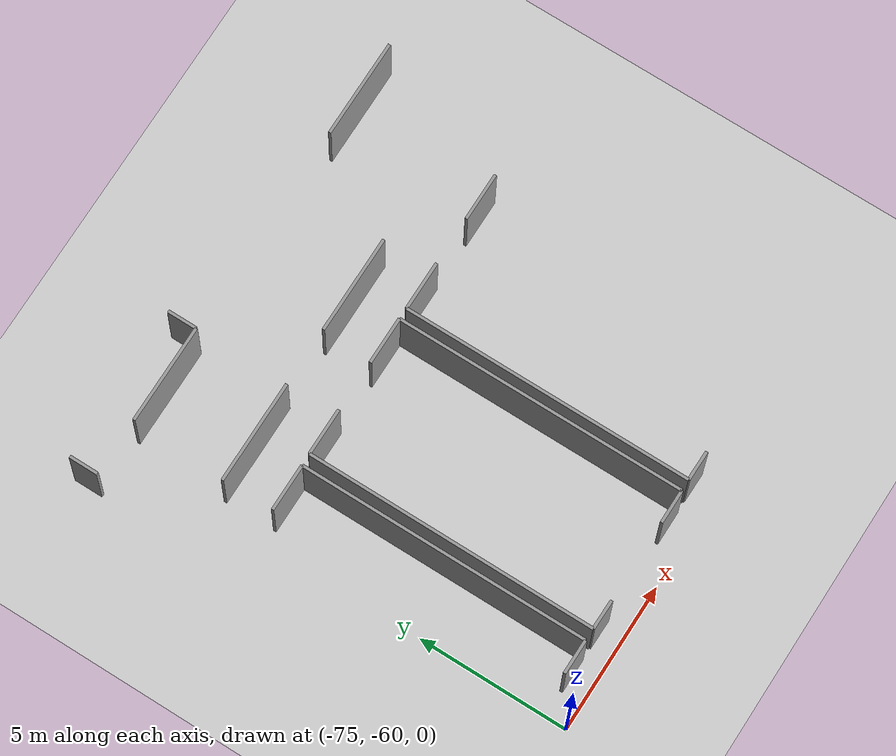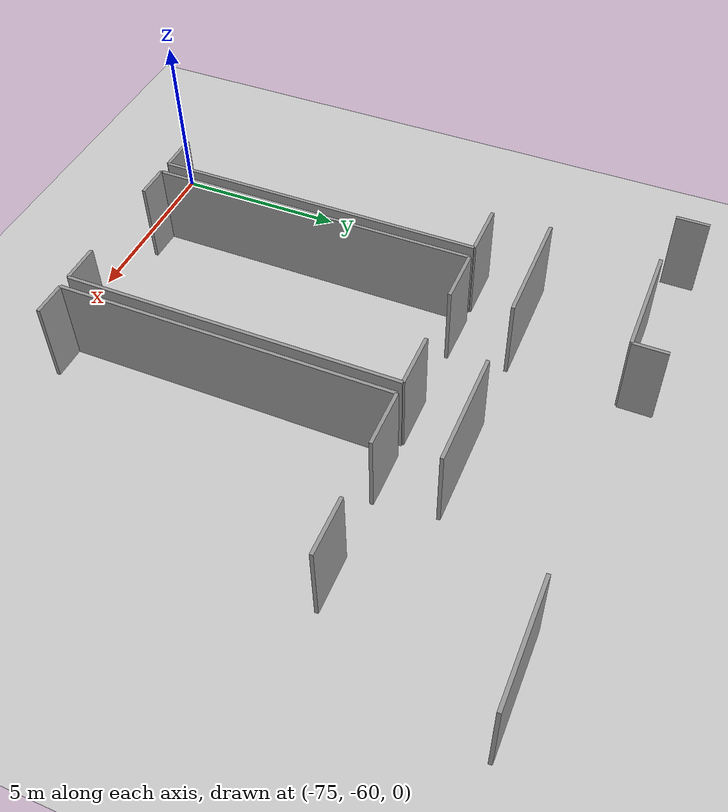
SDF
<sdf version="1.6">
 <world name="default">
  <model name="ground_plane">
   <static>1</static>
   <link name="link">
    <collision name="collision">
     <geometry><plane><normal>0 0 1</normal><size>100 100</size></plane></geometry>
     <surface><friction><ode><mu>100</mu><mu2>50</mu2></ode></friction></surface>
    </collision>
    <visual name="visual">
     <cast_shadows>0</cast_shadows>
     <geometry><plane><normal>0 0 1</normal><size>100 100</size></plane></geometry>
     <material>
      <script><uri>file://media/materials/scripts/gazebo.material</uri><name>Gazebo/Grey</name></script>
     </material>
    </visual>
   </link>
  </model>
  <model name="0510045926_A-40">
   <static>1</static>
   <link name="Wall_1304">
    <collision name="Wall_1304_Collision">
     <geometry><box><size>1.56768179309 0.1 2.5</size></box></geometry>
     <pose>0.783840896543 0 1.25 0 0 0</pose>
    </collision>
    <visual name="Wall_1304_Visual">
     <pose>0.783840896543 0 1.25 0 0 0</pose>
     <geometry><box><size>1.56768179309 0.1 2.5</size></box></geometry>
     <material>
      <script><uri>file://media/materials/scripts/gazebo.material</uri><name>Gazebo/Grey</name></script>
      <ambient>1 1 1 1</ambient>
     </material>
    </visual>
    <pose>59.3919648693 -150.813780674 0 0 0 0.0</pose>
   </link>
   <link name="Wall_1305">
    <collision name="Wall_1305_Collision">
     <geometry><box><size>9.58580557547 0.1 2.5</size></box></geometry>
     <pose>4.79290278774 0 1.25 0 0 0</pose>
    </collision>
    <visual name="Wall_1305_Visual">
     <pose>4.79290278774 0 1.25 0 0 0</pose>
     <geometry><box><size>9.58580557547 0.1 2.5</size></box></geometry>
     <material>
      <script><uri>file://media/materials/scripts/gazebo.material</uri><name>Gazebo/Grey</name></script>
      <ambient>1 1 1 1</ambient>
     </material>
    </visual>
    <pose>60.9596466624 -150.813780674 0 0 0 -1.57079632679</pose>
   </link>
   <link name="Wall_1306">
    <collision name="Wall_1306_Collision">
     <geometry><box><size>1.14098602007 0.1 2.5</size></box></geometry>
     <pose>0.570493010033 0 1.25 0 0 0</pose>
    </collision>
    <visual name="Wall_1306_Visual">
     <pose>0.570493010033 0 1.25 0 0 0</pose>
     <geometry><box><size>1.14098602007 0.1 2.5</size></box></geometry>
     <material>
      <script><uri>file://media/materials/scripts/gazebo.material</uri><name>Gazebo/Grey</name></script>
      <ambient>1 1 1 1</ambient>
     </material>
    </visual>
    <pose>60.9596466624 -160.39958625 0 0 0 3.14159265359</pose>
   </link>
   <link name="Wall_1308">
    <collision name="Wall_1308_Collision">
     <geometry><box><size>9.60332015509 0.1 2.5</size></box></geometry>
     <pose>4.80166007755 0 1.25 0 0 0</pose>
    </collision>
    <visual name="Wall_1308_Visual">
     <pose>4.80166007755 0 1.25 0 0 0</pose>
     <geometry><box><size>9.60332015509 0.1 2.5</size></box></geometry>
     <material>
      <script><uri>file://media/materials/scripts/gazebo.material</uri><name>Gazebo/Grey</name></script>
      <ambient>1 1 1 1</ambient>
     </material>
    </visual>
    <pose>61.3617204902 -160.40694745 0 0 0 1.57079632679</pose>
   </link>
   <link name="Wall_1309">
    <collision name="Wall_1309_Collision">
     <geometry><box><size>1.56235126886 0.1 2.5</size></box></geometry>
     <pose>0.781175634428 0 1.25 0 0 0</pose>
    </collision>
    <visual name="Wall_1309_Visual">
     <pose>0.781175634428 0 1.25 0 0 0</pose>
     <geometry><box><size>1.56235126886 0.1 2.5</size></box></geometry>
     <material>
      <script><uri>file://media/materials/scripts/gazebo.material</uri><name>Gazebo/Grey</name></script>
      <ambient>1 1 1 1</ambient>
     </material>
    </visual>
    <pose>61.3617204902 -150.803627295 0 0 0 0.0</pose>
   </link>
   <link name="Wall_1310">
    <collision name="Wall_1310_Collision">
     <geometry><box><size>1.57504299322 0.1 2.5</size></box></geometry>
     <pose>0.787521496608 0 1.25 0 0 0</pose>
    </collision>
    <visual name="Wall_1310_Visual">
     <pose>0.787521496608 0 1.25 0 0 0</pose>
     <geometry><box><size>1.57504299322 0.1 2.5</size></box></geometry>
     <material>
      <script><uri>file://media/materials/scripts/gazebo.material</uri><name>Gazebo/Grey</name></script>
      <ambient>1 1 1 1</ambient>
     </material>
    </visual>
    <pose>64.6148632784 -150.803627295 0 0 0 0.0</pose>
   </link>
   <link name="Wall_1311">
    <collision name="Wall_1311_Collision">
     <geometry><box><size>9.61474270702 0.1 2.5</size></box></geometry>
     <pose>4.80737135351 0 1.25 0 0 0</pose>
    </collision>
    <visual name="Wall_1311_Visual">
     <pose>4.80737135351 0 1.25 0 0 0</pose>
     <geometry><box><size>9.61474270702 0.1 2.5</size></box></geometry>
     <material>
      <script><uri>file://media/materials/scripts/gazebo.material</uri><name>Gazebo/Grey</name></script>
      <ambient>1 1 1 1</ambient>
     </material>
    </visual>
    <pose>66.1899062716 -150.803627295 0 0 0 -1.57079632679</pose>
   </link>
   <link name="Wall_1312">
    <collision name="Wall_1312_Collision">
     <geometry><box><size>1.12524828186 0.1 2.5</size></box></geometry>
     <pose>0.562624140929 0 1.25 0 0 0</pose>
    </collision>
    <visual name="Wall_1312_Visual">
     <pose>0.562624140929 0 1.25 0 0 0</pose>
     <geometry><box><size>1.12524828186 0.1 2.5</size></box></geometry>
     <material>
      <script><uri>file://media/materials/scripts/gazebo.material</uri><name>Gazebo/Grey</name></script>
      <ambient>1 1 1 1</ambient>
     </material>
    </visual>
    <pose>66.1899062716 -160.418370002 0 0 0 3.14159265359</pose>
   </link>
   <link name="Wall_1313">
    <collision name="Wall_1313_Collision">
     <geometry><box><size>0.983928777624 0.1 2.5</size></box></geometry>
     <pose>0.491964388812 0 1.25 0 0 0</pose>
    </collision>
    <visual name="Wall_1313_Visual">
     <pose>0.491964388812 0 1.25 0 0 0</pose>
     <geometry><box><size>0.983928777624 0.1 2.5</size></box></geometry>
     <material>
      <script><uri>file://media/materials/scripts/gazebo.material</uri><name>Gazebo/Grey</name></script>
      <ambient>1 1 1 1</ambient>
     </material>
    </visual>
    <pose>62.3455829626 -160.418370002 0 0 0 3.12998326806</pose>
   </link>
   <link name="Wall_1314">
    <collision name="Wall_1314_Collision">
     <geometry><box><size>9.60458932753 0.1 2.5</size></box></geometry>
     <pose>4.80229466376 0 1.25 0 0 0</pose>
    </collision>
    <visual name="Wall_1314_Visual">
     <pose>4.80229466376 0 1.25 0 0 0</pose>
     <geometry><box><size>9.60458932753 0.1 2.5</size></box></geometry>
     <material>
      <script><uri>file://media/materials/scripts/gazebo.material</uri><name>Gazebo/Grey</name></script>
      <ambient>1 1 1 1</ambient>
     </material>
    </visual>
    <pose>66.5678658231 -160.411516471 0 0 0 1.57079632679</pose>
   </link>
   <link name="Wall_1315">
    <collision name="Wall_1315_Collision">
     <geometry><box><size>1.63444026323 0.1 2.5</size></box></geometry>
     <pose>0.817220131613 0 1.25 0 0 0</pose>
    </collision>
    <visual name="Wall_1315_Visual">
     <pose>0.817220131613 0 1.25 0 0 0</pose>
     <geometry><box><size>1.63444026323 0.1 2.5</size></box></geometry>
     <material>
      <script><uri>file://media/materials/scripts/gazebo.material</uri><name>Gazebo/Grey</name></script>
      <ambient>1 1 1 1</ambient>
     </material>
    </visual>
    <pose>66.5678658231 -150.806927143 0 0 0 0.0</pose>
   </link>
   <link name="Wall_1316">
    <collision name="Wall_1316_Collision">
     <geometry><box><size>1.6090568145 0.1 2.5</size></box></geometry>
     <pose>0.804528407252 0 1.25 0 0 0</pose>
    </collision>
    <visual name="Wall_1316_Visual">
     <pose>0.804528407252 0 1.25 0 0 0</pose>
     <geometry><box><size>1.6090568145 0.1 2.5</size></box></geometry>
     <material>
      <script><uri>file://media/materials/scripts/gazebo.material</uri><name>Gazebo/Grey</name></script>
      <ambient>1 1 1 1</ambient>
     </material>
    </visual>
    <pose>69.8253237976 -150.806927143 0 0 0 0.0</pose>
   </link>
   <link name="Wall_1319">
    <collision name="Wall_1319_Collision">
     <geometry><box><size>0.996347053866 0.1 2.5</size></box></geometry>
     <pose>0.498173526933 0 1.25 0 0 0</pose>
    </collision>
    <visual name="Wall_1319_Visual">
     <pose>0.498173526933 0 1.25 0 0 0</pose>
     <geometry><box><size>0.996347053866 0.1 2.5</size></box></geometry>
     <material>
      <script><uri>file://media/materials/scripts/gazebo.material</uri><name>Gazebo/Grey</name></script>
      <ambient>1 1 1 1</ambient>
     </material>
    </visual>
    <pose>67.5641661854 -160.421162181 0 0 0 3.1319114274</pose>
   </link>
   <link name="Wall_1415">
    <collision name="Wall_1415_Collision">
     <geometry><box><size>0.955433009906 0.1 2.5</size></box></geometry>
     <pose>0.477716504953 0 1.25 0 0 0</pose>
    </collision>
    <visual name="Wall_1415_Visual">
     <pose>0.477716504953 0 1.25 0 0 0</pose>
     <geometry><box><size>0.955433009906 0.1 2.5</size></box></geometry>
     <material>
      <script><uri>file://media/materials/scripts/gazebo.material</uri><name>Gazebo/Grey</name></script>
      <ambient>1 1 1 1</ambient>
     </material>
    </visual>
    <pose>57.5877093341 -145.985087224 0 0 0 1.57079632679</pose>
   </link>
   <link name="Wall_1419">
    <collision name="Wall_1419_Collision">
     <geometry><box><size>3.28690277505 0.1 2.5</size></box></geometry>
     <pose>1.64345138752 0 1.25 0 0 0</pose>
    </collision>
    <visual name="Wall_1419_Visual">
     <pose>1.64345138752 0 1.25 0 0 0</pose>
     <geometry><box><size>3.28690277505 0.1 2.5</size></box></geometry>
     <material>
      <script><uri>file://media/materials/scripts/gazebo.material</uri><name>Gazebo/Grey</name></script>
      <ambient>1 1 1 1</ambient>
     </material>
    </visual>
    <pose>59.4838529537 -145.983056548 0 0 0 0.0</pose>
   </link>
   <link name="Wall_1420">
    <collision name="Wall_1420_Collision">
     <geometry><box><size>0.976501272345 0.1 2.5</size></box></geometry>
     <pose>0.488250636173 0 1.25 0 0 0</pose>
    </collision>
    <visual name="Wall_1420_Visual">
     <pose>0.488250636173 0 1.25 0 0 0</pose>
     <geometry><box><size>0.976501272345 0.1 2.5</size></box></geometry>
     <material>
      <script><uri>file://media/materials/scripts/gazebo.material</uri><name>Gazebo/Grey</name></script>
      <ambient>1 1 1 1</ambient>
     </material>
    </visual>
    <pose>62.7707557287 -145.983056548 0 0 0 1.57079632679</pose>
   </link>
   <link name="Wall_1429">
    <collision name="Wall_1429_Collision">
     <geometry><box><size>3.28614127158 0.1 2.5</size></box></geometry>
     <pose>1.64307063579 0 1.25 0 0 0</pose>
    </collision>
    <visual name="Wall_1429_Visual">
     <pose>1.64307063579 0 1.25 0 0 0</pose>
     <geometry><box><size>3.28614127158 0.1 2.5</size></box></geometry>
     <material>
      <script><uri>file://media/materials/scripts/gazebo.material</uri><name>Gazebo/Grey</name></script>
      <ambient>1 1 1 1</ambient>
     </material>
    </visual>
    <pose>69.9286344339 -145.987371734 0 0 0 0.0</pose>
   </link>
   <link name="Wall_1474">
    <collision name="Wall_1474_Collision">
     <geometry><box><size>3.26278849876 0.1 2.5</size></box></geometry>
     <pose>1.63139424938 0 1.25 0 0 0</pose>
    </collision>
    <visual name="Wall_1474_Visual">
     <pose>1.63139424938 0 1.25 0 0 0</pose>
     <geometry><box><size>3.26278849876 0.1 2.5</size></box></geometry>
     <material>
      <script><uri>file://media/materials/scripts/gazebo.material</uri><name>Gazebo/Grey</name></script>
      <ambient>1 1 1 1</ambient>
     </material>
    </visual>
    <pose>67.9873082756 -149.118673969 0 0 0 3.14159265359</pose>
   </link>
   <link name="Wall_1475">
    <collision name="Wall_1475_Collision">
     <geometry><box><size>3.41178934276 0.1 2.5</size></box></geometry>
     <pose>1.70589467138 0 1.25 0 0 0</pose>
    </collision>
    <visual name="Wall_1475_Visual">
     <pose>1.70589467138 0 1.25 0 0 0</pose>
     <geometry><box><size>3.41178934276 0.1 2.5</size></box></geometry>
     <material>
      <script><uri>file://media/materials/scripts/gazebo.material</uri><name>Gazebo/Grey</name></script>
      <ambient>1 1 1 1</ambient>
     </material>
    </visual>
    <pose>62.7628868596 -149.118673969 0 0 0 3.14159265359</pose>
   </link>
   <pose>-133.95 101.113233661 0 0 0 0</pose>
  </model>
 </world>
</sdf>
